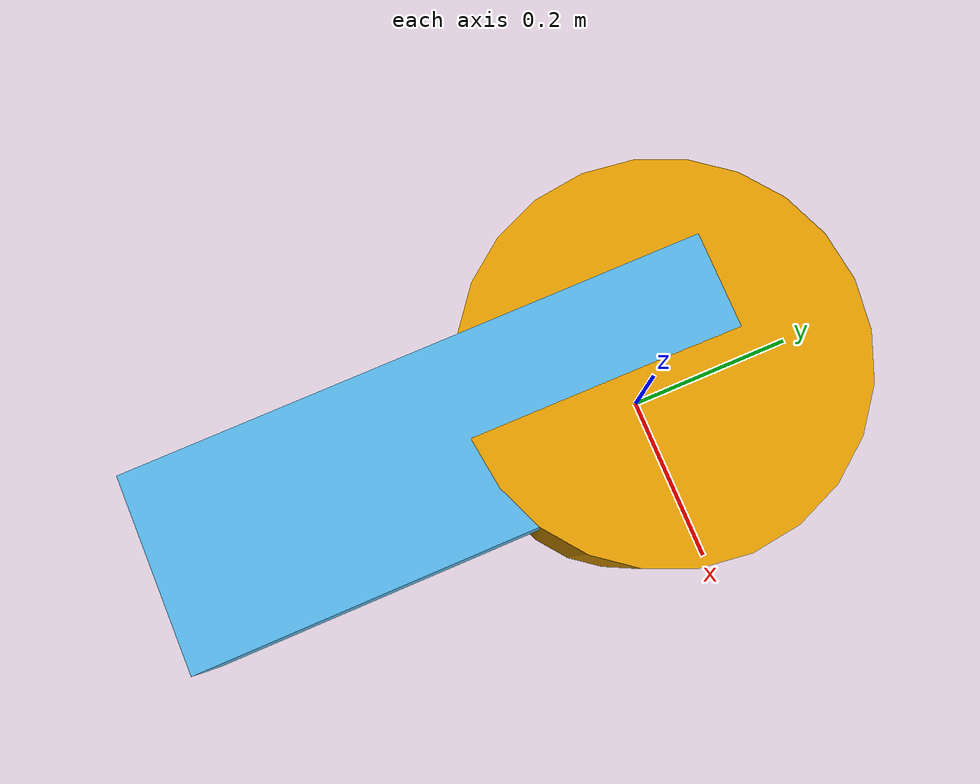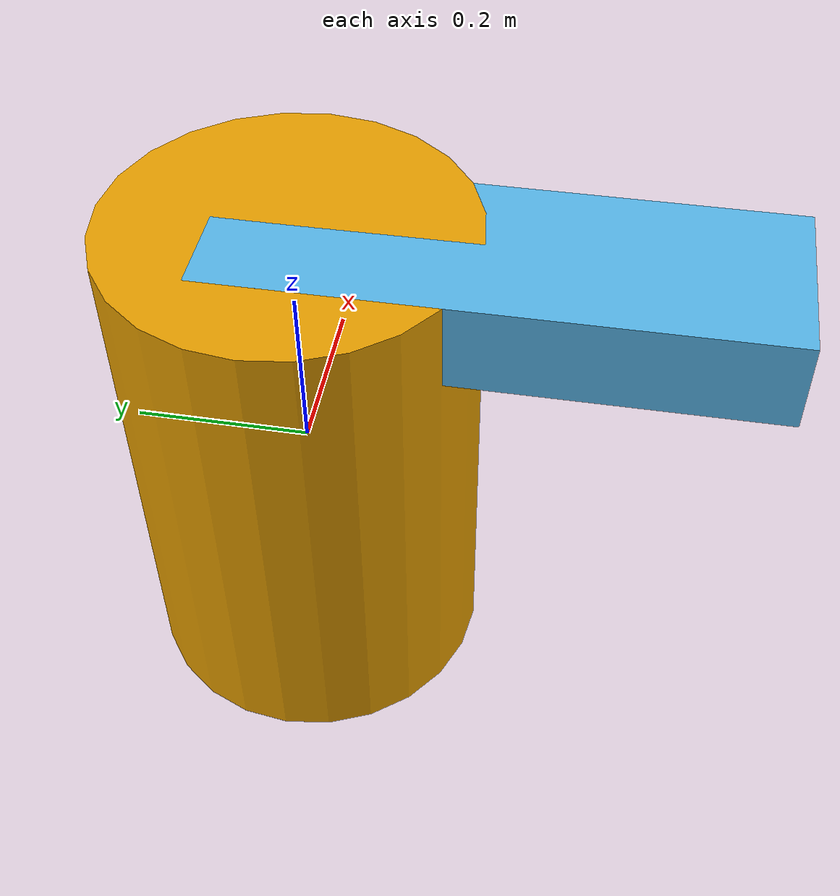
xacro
<?xml version="1.0"?>
<robot name="multipieshapes">
  <link name="base_link">
    <visual>
      <geometry>
        <cylinder length="0.6" radius="0.2"/>
      </geometry>
    </visual>
    <collision>
      <geometry>
        <cylinder length="0.6" radius="0.2"/>
      </geometry>
    </collision>
    <inertial>
      <origin xyz="0 0 0" rpy="0 0 0" />
      <mass value="1.0" />
      <inertia ixx="0.01" ixy="0" ixz="0" iyy="0.01" iyz="0" izz="0.01" />
    </inertial>
  </link>

  <joint name="base_to_right_leg" type="fixed">
    <parent link="base_link"/>
    <child link="right_leg"/>
    <origin xyz="0.0 -0.22 0.25" rpy="-1.57075 0 1.57075" />
  </joint>

  <link name="right_leg">
    <visual>
      <geometry>
        <box size="0.6 0.1 0.2"/>
      </geometry>
      <origin xyz="0.0 0.0 0.0" rpy="0 0 0" />
    </visual>
    <collision>
      <geometry>
        <box size="0.6 0.1 0.2"/>
      </geometry>
      <origin xyz="0.0 0.0 0.0" rpy="0 0 0" />
    </collision>
    <inertial>
      <origin xyz="0 0 0" rpy="0 0 0" />
      <mass value="0.5" />
      <inertia ixx="0.005" ixy="0" ixz="0" iyy="0.005" iyz="0" izz="0.005" />
    </inertial>
  </link>

</robot>
